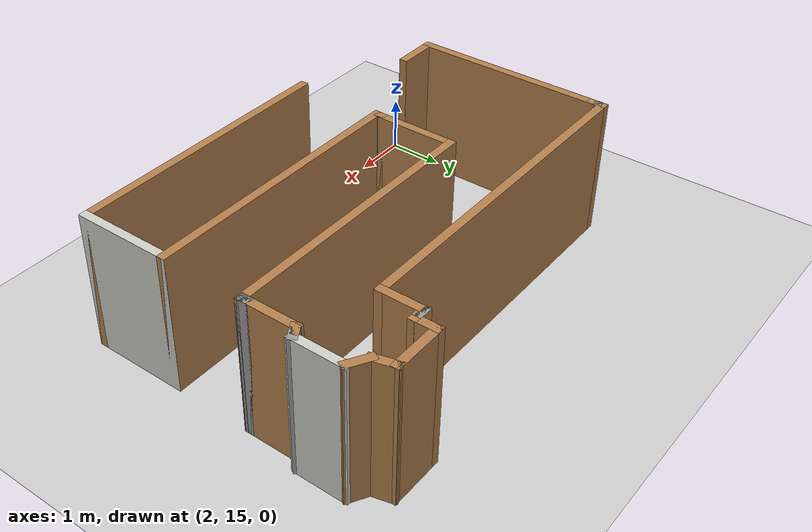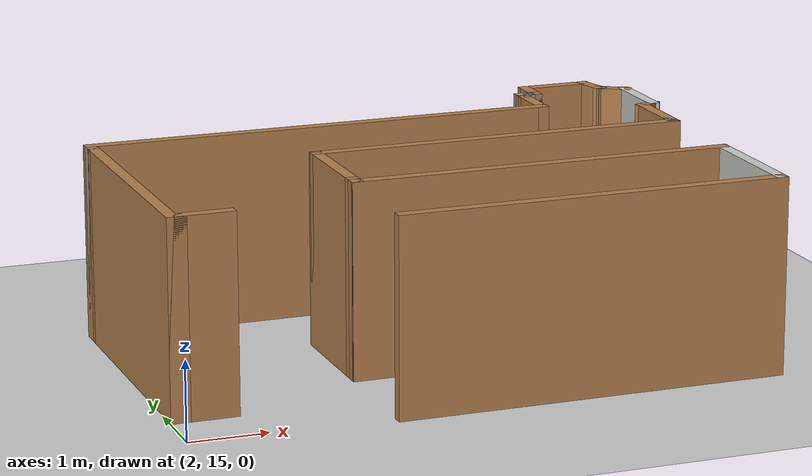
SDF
<sdf version="1.6">
 <world name="default">
  <model name="ground_plane">
   <static>1</static>
   <link name="link">
    <collision name="collision">
     <geometry><plane><normal>0 0 1</normal><size>100 100</size></plane></geometry>
     <surface>
      <contact><collide_bitmask>65535</collide_bitmask></contact>
      <friction><ode><mu>100</mu><mu2>50</mu2></ode></friction>
     </surface>
    </collision>
    <visual name="visual">
     <cast_shadows>0</cast_shadows>
     <geometry><plane><normal>0 0 1</normal><size>100 100</size></plane></geometry>
     <material>
      <script><uri>file://media/materials/scripts/gazebo.material</uri><name>Gazebo/Grey</name></script>
     </material>
    </visual>
   </link>
  </model>
  <model name="ecst_lab_v2">
   <pose>2.38151 7.60499 -4e-06 -3e-06 3e-06 -1.57079</pose>
   <link name="Wall_100">
    <collision name="Wall_100_Collision">
     <geometry><box><size>1 0.15 2.5</size></box></geometry>
     <pose>0 0 1.25 0 -0 0</pose>
    </collision>
    <visual name="Wall_100_Visual">
     <pose>0 0 1.25 0 -0 0</pose>
     <geometry><box><size>1 0.15 2.5</size></box></geometry>
     <material>
      <script><uri>file://media/materials/scripts/gazebo.material</uri><name>Gazebo/Wood</name></script>
      <ambient>1 1 1 1</ambient>
     </material>
     <meta><layer>0</layer></meta>
    </visual>
    <pose>-10.8485 7.06822 0 0 -0 0</pose>
    <inertial>
     <inertia><ixx>1</ixx><ixy>0</ixy><ixz>0</ixz><iyy>1</iyy><iyz>0</iyz><izz>1</izz></inertia>
     <mass>1</mass>
    </inertial>
   </link>
   <link name="Wall_101">
    <collision name="Wall_101_Collision">
     <geometry><box><size>0.15 0.15 2.5</size></box></geometry>
     <pose>0 0 1.25 0 -0 0</pose>
    </collision>
    <visual name="Wall_101_Visual">
     <pose>0 0 1.25 0 -0 0</pose>
     <geometry><box><size>0.15 0.15 2.5</size></box></geometry>
     <material>
      <script><uri>file://media/materials/scripts/gazebo.material</uri><name>Gazebo/Grey</name></script>
      <ambient>1 1 1 1</ambient>
     </material>
     <meta><layer>0</layer></meta>
    </visual>
    <pose>-10.4235 7.06822 0 0 -0 0</pose>
    <inertial>
     <inertia><ixx>1</ixx><ixy>0</ixy><ixz>0</ixz><iyy>1</iyy><iyz>0</iyz><izz>1</izz></inertia>
     <mass>1</mass>
    </inertial>
   </link>
   <link name="Wall_102">
    <collision name="Wall_102_Collision">
     <geometry><box><size>0.16 0.15 2.5</size></box></geometry>
     <pose>0 0 1.25 0 -0 0</pose>
    </collision>
    <visual name="Wall_102_Visual">
     <pose>0 0 1.25 0 -0 0</pose>
     <geometry><box><size>0.16 0.15 2.5</size></box></geometry>
     <material>
      <script><uri>file://media/materials/scripts/gazebo.material</uri><name>Gazebo/Grey</name></script>
      <ambient>1 1 1 1</ambient>
     </material>
     <meta><layer>0</layer></meta>
    </visual>
    <pose>-10.4185 7.06822 0 0 -0 0</pose>
    <inertial>
     <inertia><ixx>1</ixx><ixy>0</ixy><ixz>0</ixz><iyy>1</iyy><iyz>0</iyz><izz>1</izz></inertia>
     <mass>1</mass>
    </inertial>
   </link>
   <link name="Wall_103">
    <collision name="Wall_103_Collision">
     <geometry><box><size>0.16 0.15 2.5</size></box></geometry>
     <pose>0 0 1.25 0 -0 0</pose>
    </collision>
    <visual name="Wall_103_Visual">
     <pose>0 0 1.25 0 -0 0</pose>
     <geometry><box><size>0.16 0.15 2.5</size></box></geometry>
     <material>
      <script><uri>file://media/materials/scripts/gazebo.material</uri><name>Gazebo/Grey</name></script>
      <ambient>1 1 1 1</ambient>
     </material>
     <meta><layer>0</layer></meta>
    </visual>
    <pose>-10.4085 7.06822 0 0 -0 0</pose>
    <inertial>
     <inertia><ixx>1</ixx><ixy>0</ixy><ixz>0</ixz><iyy>1</iyy><iyz>0</iyz><izz>1</izz></inertia>
     <mass>1</mass>
    </inertial>
   </link>
   <link name="Wall_104">
    <collision name="Wall_104_Collision">
     <geometry><box><size>0.16 0.15 2.5</size></box></geometry>
     <pose>0 0 1.25 0 -0 0</pose>
    </collision>
    <visual name="Wall_104_Visual">
     <pose>0 0 1.25 0 -0 0</pose>
     <geometry><box><size>0.16 0.15 2.5</size></box></geometry>
     <material>
      <script><uri>file://media/materials/scripts/gazebo.material</uri><name>Gazebo/Wood</name></script>
      <ambient>1 1 1 1</ambient>
     </material>
     <meta><layer>0</layer></meta>
    </visual>
    <pose>-10.3985 7.06822 0 0 -0 0</pose>
    <inertial>
     <inertia><ixx>1</ixx><ixy>0</ixy><ixz>0</ixz><iyy>1</iyy><iyz>0</iyz><izz>1</izz></inertia>
     <mass>1</mass>
    </inertial>
   </link>
   <link name="Wall_105">
    <collision name="Wall_105_Collision">
     <geometry><box><size>0.16 0.15 2.5</size></box></geometry>
     <pose>0 0 1.25 0 -0 0</pose>
    </collision>
    <visual name="Wall_105_Visual">
     <pose>0 0 1.25 0 -0 0</pose>
     <geometry><box><size>0.16 0.15 2.5</size></box></geometry>
     <material>
      <script><uri>file://media/materials/scripts/gazebo.material</uri><name>Gazebo/Grey</name></script>
      <ambient>1 1 1 1</ambient>
     </material>
     <meta><layer>0</layer></meta>
    </visual>
    <pose>-10.3885 7.06822 0 0 -0 0</pose>
    <inertial>
     <inertia><ixx>1</ixx><ixy>0</ixy><ixz>0</ixz><iyy>1</iyy><iyz>0</iyz><izz>1</izz></inertia>
     <mass>1</mass>
    </inertial>
   </link>
   <link name="Wall_106">
    <collision name="Wall_106_Collision">
     <geometry><box><size>0.16 0.15 2.5</size></box></geometry>
     <pose>0 0 1.25 0 -0 0</pose>
    </collision>
    <visual name="Wall_106_Visual">
     <pose>0 0 1.25 0 -0 0</pose>
     <geometry><box><size>0.16 0.15 2.5</size></box></geometry>
     <material>
      <script><uri>file://media/materials/scripts/gazebo.material</uri><name>Gazebo/Wood</name></script>
      <ambient>1 1 1 1</ambient>
     </material>
     <meta><layer>0</layer></meta>
    </visual>
    <pose>-10.3785 7.06822 0 0 -0 0</pose>
    <inertial>
     <inertia><ixx>1</ixx><ixy>0</ixy><ixz>0</ixz><iyy>1</iyy><iyz>0</iyz><izz>1</izz></inertia>
     <mass>1</mass>
    </inertial>
   </link>
   <link name="Wall_107">
    <collision name="Wall_107_Collision">
     <geometry><box><size>0.16 0.15 2.5</size></box></geometry>
     <pose>0 0 1.25 0 -0 0</pose>
    </collision>
    <visual name="Wall_107_Visual">
     <pose>0 0 1.25 0 -0 0</pose>
     <geometry><box><size>0.16 0.15 2.5</size></box></geometry>
     <material>
      <script><uri>file://media/materials/scripts/gazebo.material</uri><name>Gazebo/Grey</name></script>
      <ambient>1 1 1 1</ambient>
     </material>
     <meta><layer>0</layer></meta>
    </visual>
    <pose>-10.3685 7.06822 0 0 -0 0</pose>
    <inertial>
     <inertia><ixx>1</ixx><ixy>0</ixy><ixz>0</ixz><iyy>1</iyy><iyz>0</iyz><izz>1</izz></inertia>
     <mass>1</mass>
    </inertial>
   </link>
   <link name="Wall_108">
    <collision name="Wall_108_Collision">
     <geometry><box><size>0.16 0.15 2.5</size></box></geometry>
     <pose>0 0 1.25 0 -0 0</pose>
    </collision>
    <visual name="Wall_108_Visual">
     <pose>0 0 1.25 0 -0 0</pose>
     <geometry><box><size>0.16 0.15 2.5</size></box></geometry>
     <material>
      <script><uri>file://media/materials/scripts/gazebo.material</uri><name>Gazebo/Grey</name></script>
      <ambient>1 1 1 1</ambient>
     </material>
     <meta><layer>0</layer></meta>
    </visual>
    <pose>-10.3685 7.06822 0 0 -0 3.14159</pose>
    <inertial>
     <inertia><ixx>1</ixx><ixy>0</ixy><ixz>0</ixz><iyy>1</iyy><iyz>0</iyz><izz>1</izz></inertia>
     <mass>1</mass>
    </inertial>
   </link>
   <link name="Wall_109">
    <collision name="Wall_109_Collision">
     <geometry><box><size>0.16 0.15 2.5</size></box></geometry>
     <pose>0 0 1.25 0 -0 0</pose>
    </collision>
    <visual name="Wall_109_Visual">
     <pose>0 0 1.25 0 -0 0</pose>
     <geometry><box><size>0.16 0.15 2.5</size></box></geometry>
     <material>
      <script><uri>file://media/materials/scripts/gazebo.material</uri><name>Gazebo/Grey</name></script>
      <ambient>1 1 1 1</ambient>
     </material>
     <meta><layer>0</layer></meta>
    </visual>
    <pose>-10.3685 7.06822 0 0 -0 0</pose>
    <inertial>
     <inertia><ixx>1</ixx><ixy>0</ixy><ixz>0</ixz><iyy>1</iyy><iyz>0</iyz><izz>1</izz></inertia>
     <mass>1</mass>
    </inertial>
   </link>
   <link name="Wall_110">
    <collision name="Wall_110_Collision">
     <geometry><box><size>0.16 0.15 2.5</size></box></geometry>
     <pose>0 0 1.25 0 -0 0</pose>
    </collision>
    <visual name="Wall_110_Visual">
     <pose>0 0 1.25 0 -0 0</pose>
     <geometry><box><size>0.16 0.15 2.5</size></box></geometry>
     <material>
      <script><uri>file://media/materials/scripts/gazebo.material</uri><name>Gazebo/Grey</name></script>
      <ambient>1 1 1 1</ambient>
     </material>
     <meta><layer>0</layer></meta>
    </visual>
    <pose>-10.3685 7.06822 0 0 -0 3.14159</pose>
    <inertial>
     <inertia><ixx>1</ixx><ixy>0</ixy><ixz>0</ixz><iyy>1</iyy><iyz>0</iyz><izz>1</izz></inertia>
     <mass>1</mass>
    </inertial>
   </link>
   <link name="Wall_111">
    <collision name="Wall_111_Collision">
     <geometry><box><size>0.16 0.15 2.5</size></box></geometry>
     <pose>0 0 1.25 0 -0 0</pose>
    </collision>
    <visual name="Wall_111_Visual">
     <pose>0 0 1.25 0 -0 0</pose>
     <geometry><box><size>0.16 0.15 2.5</size></box></geometry>
     <material>
      <script><uri>file://media/materials/scripts/gazebo.material</uri><name>Gazebo/Grey</name></script>
      <ambient>1 1 1 1</ambient>
     </material>
     <meta><layer>0</layer></meta>
    </visual>
    <pose>-10.3685 7.06822 0 0 -0 0</pose>
    <inertial>
     <inertia><ixx>1</ixx><ixy>0</ixy><ixz>0</ixz><iyy>1</iyy><iyz>0</iyz><izz>1</izz></inertia>
     <mass>1</mass>
    </inertial>
   </link>
   <link name="Wall_112">
    <collision name="Wall_112_Collision">
     <geometry><box><size>0.16 0.15 2.5</size></box></geometry>
     <pose>0 0 1.25 0 -0 0</pose>
    </collision>
    <visual name="Wall_112_Visual">
     <pose>0 0 1.25 0 -0 0</pose>
     <geometry><box><size>0.16 0.15 2.5</size></box></geometry>
     <material>
      <script><uri>file://media/materials/scripts/gazebo.material</uri><name>Gazebo/Grey</name></script>
      <ambient>1 1 1 1</ambient>
     </material>
     <meta><layer>0</layer></meta>
    </visual>
    <pose>-10.3685 7.06822 0 0 -0 3.14159</pose>
    <inertial>
     <inertia><ixx>1</ixx><ixy>0</ixy><ixz>0</ixz><iyy>1</iyy><iyz>0</iyz><izz>1</izz></inertia>
     <mass>1</mass>
    </inertial>
   </link>
   <link name="Wall_113">
    <collision name="Wall_113_Collision">
     <geometry><box><size>0.16 0.15 2.5</size></box></geometry>
     <pose>0 0 1.25 0 -0 0</pose>
    </collision>
    <visual name="Wall_113_Visual">
     <pose>0 0 1.25 0 -0 0</pose>
     <geometry><box><size>0.16 0.15 2.5</size></box></geometry>
     <material>
      <script><uri>file://media/materials/scripts/gazebo.material</uri><name>Gazebo/Grey</name></script>
      <ambient>1 1 1 1</ambient>
     </material>
     <meta><layer>0</layer></meta>
    </visual>
    <pose>-10.3685 7.06822 0 0 -0 0</pose>
    <inertial>
     <inertia><ixx>1</ixx><ixy>0</ixy><ixz>0</ixz><iyy>1</iyy><iyz>0</iyz><izz>1</izz></inertia>
     <mass>1</mass>
    </inertial>
   </link>
   <link name="Wall_114">
    <collision name="Wall_114_Collision">
     <geometry><box><size>0.16 0.15 2.5</size></box></geometry>
     <pose>0 0 1.25 0 -0 0</pose>
    </collision>
    <visual name="Wall_114_Visual">
     <pose>0 0 1.25 0 -0 0</pose>
     <geometry><box><size>0.16 0.15 2.5</size></box></geometry>
     <material>
      <script><uri>file://media/materials/scripts/gazebo.material</uri><name>Gazebo/Grey</name></script>
      <ambient>1 1 1 1</ambient>
     </material>
     <meta><layer>0</layer></meta>
    </visual>
    <pose>-10.3685 7.06822 0 0 -0 3.14159</pose>
    <inertial>
     <inertia><ixx>1</ixx><ixy>0</ixy><ixz>0</ixz><iyy>1</iyy><iyz>0</iyz><izz>1</izz></inertia>
     <mass>1</mass>
    </inertial>
   </link>
   <link name="Wall_115">
    <collision name="Wall_115_Collision">
     <geometry><box><size>0.16 0.15 2.5</size></box></geometry>
     <pose>0 0 1.25 0 -0 0</pose>
    </collision>
    <visual name="Wall_115_Visual">
     <pose>0 0 1.25 0 -0 0</pose>
     <geometry><box><size>0.16 0.15 2.5</size></box></geometry>
     <material>
      <script><uri>file://media/materials/scripts/gazebo.material</uri><name>Gazebo/Wood</name></script>
      <ambient>1 1 1 1</ambient>
     </material>
     <meta><layer>0</layer></meta>
    </visual>
    <pose>-10.3685 7.06822 0 0 -0 0</pose>
    <inertial>
     <inertia><ixx>1</ixx><ixy>0</ixy><ixz>0</ixz><iyy>1</iyy><iyz>0</iyz><izz>1</izz></inertia>
     <mass>1</mass>
    </inertial>
   </link>
   <link name="Wall_116">
    <collision name="Wall_116_Collision">
     <geometry><box><size>0.16 0.15 2.5</size></box></geometry>
     <pose>0 0 1.25 0 -0 0</pose>
    </collision>
    <visual name="Wall_116_Visual">
     <pose>0 0 1.25 0 -0 0</pose>
     <geometry><box><size>0.16 0.15 2.5</size></box></geometry>
     <material>
      <script><uri>file://media/materials/scripts/gazebo.material</uri><name>Gazebo/Grey</name></script>
      <ambient>1 1 1 1</ambient>
     </material>
     <meta><layer>0</layer></meta>
    </visual>
    <pose>-10.3585 7.06822 0 0 -0 0</pose>
    <inertial>
     <inertia><ixx>1</ixx><ixy>0</ixy><ixz>0</ixz><iyy>1</iyy><iyz>0</iyz><izz>1</izz></inertia>
     <mass>1</mass>
    </inertial>
   </link>
   <link name="Wall_117">
    <collision name="Wall_117_Collision">
     <geometry><box><size>0.16 0.15 2.5</size></box></geometry>
     <pose>0 0 1.25 0 -0 0</pose>
    </collision>
    <visual name="Wall_117_Visual">
     <pose>0 0 1.25 0 -0 0</pose>
     <geometry><box><size>0.16 0.15 2.5</size></box></geometry>
     <material>
      <script><uri>file://media/materials/scripts/gazebo.material</uri><name>Gazebo/Wood</name></script>
      <ambient>1 1 1 1</ambient>
     </material>
     <meta><layer>0</layer></meta>
    </visual>
    <pose>-10.3485 7.06822 0 0 -0 0</pose>
    <inertial>
     <inertia><ixx>1</ixx><ixy>0</ixy><ixz>0</ixz><iyy>1</iyy><iyz>0</iyz><izz>1</izz></inertia>
     <mass>1</mass>
    </inertial>
   </link>
   <link name="Wall_118">
    <collision name="Wall_118_Collision">
     <geometry><box><size>5 0.15 2.5</size></box></geometry>
     <pose>0 0 1.25 0 -0 0</pose>
    </collision>
    <visual name="Wall_118_Visual">
     <pose>0 0 1.25 0 -0 0</pose>
     <geometry><box><size>5 0.15 2.5</size></box></geometry>
     <material>
      <script><uri>file://media/materials/scripts/gazebo.material</uri><name>Gazebo/Wood</name></script>
      <ambient>1 1 1 1</ambient>
     </material>
     <meta><layer>0</layer></meta>
    </visual>
    <pose>-10.3435 4.64322 0 0 -0 -1.5708</pose>
    <inertial>
     <inertia><ixx>1</ixx><ixy>0</ixy><ixz>0</ixz><iyy>1</iyy><iyz>0</iyz><izz>1</izz></inertia>
     <mass>1</mass>
    </inertial>
   </link>
   <link name="Wall_119">
    <collision name="Wall_119_Collision">
     <geometry><box><size>1.5 0.15 2.5</size></box></geometry>
     <pose>0 0 1.25 0 -0 0</pose>
    </collision>
    <visual name="Wall_119_Visual">
     <pose>0 0 1.25 0 -0 0</pose>
     <geometry><box><size>1.5 0.15 2.5</size></box></geometry>
     <material>
      <script><uri>file://media/materials/scripts/gazebo.material</uri><name>Gazebo/Wood</name></script>
      <ambient>1 1 1 1</ambient>
     </material>
     <meta><layer>0</layer></meta>
    </visual>
    <pose>-9.6685 2.21822 0 0 -0 0</pose>
    <inertial>
     <inertia><ixx>1</ixx><ixy>0</ixy><ixz>0</ixz><iyy>1</iyy><iyz>0</iyz><izz>1</izz></inertia>
     <mass>1</mass>
    </inertial>
   </link>
   <link name="Wall_120">
    <collision name="Wall_120_Collision">
     <geometry><box><size>0.25 0.15 2.5</size></box></geometry>
     <pose>0 0 1.25 0 -0 0</pose>
    </collision>
    <visual name="Wall_120_Visual">
     <pose>0 0 1.25 0 -0 0</pose>
     <geometry><box><size>0.25 0.15 2.5</size></box></geometry>
     <material>
      <script><uri>file://media/materials/scripts/gazebo.material</uri><name>Gazebo/Wood</name></script>
      <ambient>1 1 1 1</ambient>
     </material>
     <meta><layer>0</layer></meta>
    </visual>
    <pose>-8.9435 2.21822 0 0 -0 0</pose>
    <inertial>
     <inertia><ixx>1</ixx><ixy>0</ixy><ixz>0</ixz><iyy>1</iyy><iyz>0</iyz><izz>1</izz></inertia>
     <mass>1</mass>
    </inertial>
   </link>
   <link name="Wall_121">
    <collision name="Wall_121_Collision">
     <geometry><box><size>0.15 0.15 2.5</size></box></geometry>
     <pose>0 0 1.25 0 -0 0</pose>
    </collision>
    <visual name="Wall_121_Visual">
     <pose>0 0 1.25 0 -0 0</pose>
     <geometry><box><size>0.15 0.15 2.5</size></box></geometry>
     <material>
      <script><uri>file://media/materials/scripts/gazebo.material</uri><name>Gazebo/Grey</name></script>
      <ambient>1 1 1 1</ambient>
     </material>
     <meta><layer>0</layer></meta>
    </visual>
    <pose>-8.8935 2.21822 0 0 -0 0</pose>
    <inertial>
     <inertia><ixx>1</ixx><ixy>0</ixy><ixz>0</ixz><iyy>1</iyy><iyz>0</iyz><izz>1</izz></inertia>
     <mass>1</mass>
    </inertial>
   </link>
   <link name="Wall_122">
    <collision name="Wall_122_Collision">
     <geometry><box><size>0.16 0.15 2.5</size></box></geometry>
     <pose>0 0 1.25 0 -0 0</pose>
    </collision>
    <visual name="Wall_122_Visual">
     <pose>0 0 1.25 0 -0 0</pose>
     <geometry><box><size>0.16 0.15 2.5</size></box></geometry>
     <material>
      <script><uri>file://media/materials/scripts/gazebo.material</uri><name>Gazebo/Wood</name></script>
      <ambient>1 1 1 1</ambient>
     </material>
     <meta><layer>0</layer></meta>
    </visual>
    <pose>-8.8885 2.21822 0 0 -0 0</pose>
    <inertial>
     <inertia><ixx>1</ixx><ixy>0</ixy><ixz>0</ixz><iyy>1</iyy><iyz>0</iyz><izz>1</izz></inertia>
     <mass>1</mass>
    </inertial>
   </link>
   <link name="Wall_123">
    <collision name="Wall_123_Collision">
     <geometry><box><size>5 0.15 2.5</size></box></geometry>
     <pose>0 0 1.25 0 -0 0</pose>
    </collision>
    <visual name="Wall_123_Visual">
     <pose>0 0 1.25 0 -0 0</pose>
     <geometry><box><size>5 0.15 2.5</size></box></geometry>
     <material>
      <script><uri>file://media/materials/scripts/gazebo.material</uri><name>Gazebo/Wood</name></script>
      <ambient>1 1 1 1</ambient>
     </material>
     <meta><layer>0</layer></meta>
    </visual>
    <pose>-8.8835 4.64322 0 0 -0 1.5708</pose>
    <inertial>
     <inertia><ixx>1</ixx><ixy>0</ixy><ixz>0</ixz><iyy>1</iyy><iyz>0</iyz><izz>1</izz></inertia>
     <mass>1</mass>
    </inertial>
   </link>
   <link name="Wall_124">
    <collision name="Wall_124_Collision">
     <geometry><box><size>1.75 0.15 2.5</size></box></geometry>
     <pose>0 0 1.25 0 -0 0</pose>
    </collision>
    <visual name="Wall_124_Visual">
     <pose>0 0 1.25 0 -0 0</pose>
     <geometry><box><size>1.75 0.15 2.5</size></box></geometry>
     <material>
      <script><uri>file://media/materials/scripts/gazebo.material</uri><name>Gazebo/CeilingTiled</name></script>
      <ambient>1 1 1 1</ambient>
     </material>
     <meta><layer>0</layer></meta>
    </visual>
    <pose>-8.0835 7.06822 0 0 -0 0</pose>
    <inertial>
     <inertia><ixx>1</ixx><ixy>0</ixy><ixz>0</ixz><iyy>1</iyy><iyz>0</iyz><izz>1</izz></inertia>
     <mass>1</mass>
    </inertial>
   </link>
   <link name="Wall_125">
    <collision name="Wall_125_Collision">
     <geometry><box><size>5 0.15 2.5</size></box></geometry>
     <pose>0 0 1.25 0 -0 0</pose>
    </collision>
    <visual name="Wall_125_Visual">
     <pose>0 0 1.25 0 -0 0</pose>
     <geometry><box><size>5 0.15 2.5</size></box></geometry>
     <material>
      <script><uri>file://media/materials/scripts/gazebo.material</uri><name>Gazebo/Wood</name></script>
      <ambient>1 1 1 1</ambient>
     </material>
     <meta><layer>0</layer></meta>
    </visual>
    <pose>-7.2835 4.64322 0 0 -0 -1.5708</pose>
    <inertial>
     <inertia><ixx>1</ixx><ixy>0</ixy><ixz>0</ixz><iyy>1</iyy><iyz>0</iyz><izz>1</izz></inertia>
     <mass>1</mass>
    </inertial>
   </link>
   <link name="Wall_79">
    <collision name="Wall_79_Collision">
     <geometry><box><size>0.75 0.15 2.5</size></box></geometry>
     <pose>0 0 1.25 0 -0 0</pose>
    </collision>
    <visual name="Wall_79_Visual">
     <pose>0 0 1.25 0 -0 0</pose>
     <geometry><box><size>0.75 0.15 2.5</size></box></geometry>
     <material>
      <script><uri>file://media/materials/scripts/gazebo.material</uri><name>Gazebo/Wood</name></script>
      <ambient>1 1 1 1</ambient>
     </material>
     <meta><layer>0</layer></meta>
    </visual>
    <pose>-8.14657 0.097726 0 0 -0 -1.5708</pose>
    <inertial>
     <inertia><ixx>1</ixx><ixy>0</ixy><ixz>0</ixz><iyy>1</iyy><iyz>0</iyz><izz>1</izz></inertia>
     <mass>1</mass>
    </inertial>
   </link>
   <link name="Wall_80">
    <collision name="Wall_80_Collision">
     <geometry><box><size>0.25 0.15 2.5</size></box></geometry>
     <pose>0 0 1.25 0 -0 0</pose>
    </collision>
    <visual name="Wall_80_Visual">
     <pose>0 0 1.25 0 -0 0</pose>
     <geometry><box><size>0.25 0.15 2.5</size></box></geometry>
     <material>
      <script><uri>file://media/materials/scripts/gazebo.material</uri><name>Gazebo/Wood</name></script>
      <ambient>1 1 1 1</ambient>
     </material>
     <meta><layer>0</layer></meta>
    </visual>
    <pose>-8.14657 -0.252274 0 0 -0 -1.5708</pose>
    <inertial>
     <inertia><ixx>1</ixx><ixy>0</ixy><ixz>0</ixz><iyy>1</iyy><iyz>0</iyz><izz>1</izz></inertia>
     <mass>1</mass>
    </inertial>
   </link>
   <link name="Wall_81">
    <collision name="Wall_81_Collision">
     <geometry><box><size>3.5 0.15 2.5</size></box></geometry>
     <pose>0 0 1.25 0 -0 0</pose>
    </collision>
    <visual name="Wall_81_Visual">
     <pose>0 0 1.25 0 -0 0</pose>
     <geometry><box><size>3.5 0.15 2.5</size></box></geometry>
     <material>
      <script><uri>file://media/materials/scripts/gazebo.material</uri><name>Gazebo/Wood</name></script>
      <ambient>1 1 1 1</ambient>
     </material>
     <meta><layer>0</layer></meta>
    </visual>
    <pose>-9.82157 -0.302274 0 0 -0 3.14159</pose>
    <inertial>
     <inertia><ixx>1</ixx><ixy>0</ixy><ixz>0</ixz><iyy>1</iyy><iyz>0</iyz><izz>1</izz></inertia>
     <mass>1</mass>
    </inertial>
   </link>
   <link name="Wall_82">
    <collision name="Wall_82_Collision">
     <geometry><box><size>0.25 0.15 2.5</size></box></geometry>
     <pose>0 0 1.25 0 -0 0</pose>
    </collision>
    <visual name="Wall_82_Visual">
     <pose>0 0 1.25 0 -0 0</pose>
     <geometry><box><size>0.25 0.15 2.5</size></box></geometry>
     <material>
      <script><uri>file://media/materials/scripts/gazebo.material</uri><name>Gazebo/Wood</name></script>
      <ambient>1 1 1 1</ambient>
     </material>
     <meta><layer>0</layer></meta>
    </visual>
    <pose>-11.5466 -0.302274 0 0 -0 3.14159</pose>
    <inertial>
     <inertia><ixx>1</ixx><ixy>0</ixy><ixz>0</ixz><iyy>1</iyy><iyz>0</iyz><izz>1</izz></inertia>
     <mass>1</mass>
    </inertial>
   </link>
   <link name="Wall_83">
    <collision name="Wall_83_Collision">
     <geometry><box><size>0.15 0.15 2.5</size></box></geometry>
     <pose>0 0 1.25 0 -0 0</pose>
    </collision>
    <visual name="Wall_83_Visual">
     <pose>0 0 1.25 0 -0 0</pose>
     <geometry><box><size>0.15 0.15 2.5</size></box></geometry>
     <material>
      <script><uri>file://media/materials/scripts/gazebo.material</uri><name>Gazebo/Grey</name></script>
      <ambient>1 1 1 1</ambient>
     </material>
     <meta><layer>0</layer></meta>
    </visual>
    <pose>-11.5966 -0.302274 0 0 -0 0</pose>
    <inertial>
     <inertia><ixx>1</ixx><ixy>0</ixy><ixz>0</ixz><iyy>1</iyy><iyz>0</iyz><izz>1</izz></inertia>
     <mass>1</mass>
    </inertial>
   </link>
   <link name="Wall_84">
    <collision name="Wall_84_Collision">
     <geometry><box><size>0.16 0.15 2.5</size></box></geometry>
     <pose>0 0 1.25 0 -0 0</pose>
    </collision>
    <visual name="Wall_84_Visual">
     <pose>0 0 1.25 0 -0 0</pose>
     <geometry><box><size>0.16 0.15 2.5</size></box></geometry>
     <material>
      <script><uri>file://media/materials/scripts/gazebo.material</uri><name>Gazebo/Grey</name></script>
      <ambient>1 1 1 1</ambient>
     </material>
     <meta><layer>0</layer></meta>
    </visual>
    <pose>-11.5916 -0.302274 0 0 -0 0</pose>
    <inertial>
     <inertia><ixx>1</ixx><ixy>0</ixy><ixz>0</ixz><iyy>1</iyy><iyz>0</iyz><izz>1</izz></inertia>
     <mass>1</mass>
    </inertial>
   </link>
   <link name="Wall_85">
    <collision name="Wall_85_Collision">
     <geometry><box><size>0.25 0.15 2.5</size></box></geometry>
     <pose>0 0 1.25 0 -0 0</pose>
    </collision>
    <visual name="Wall_85_Visual">
     <pose>0 0 1.25 0 -0 0</pose>
     <geometry><box><size>0.25 0.15 2.5</size></box></geometry>
     <material>
      <script><uri>file://media/materials/scripts/gazebo.material</uri><name>Gazebo/Wood</name></script>
      <ambient>1 1 1 1</ambient>
     </material>
     <meta><layer>0</layer></meta>
    </visual>
    <pose>-11.6366 -0.302274 0 0 -0 3.14159</pose>
    <inertial>
     <inertia><ixx>1</ixx><ixy>0</ixy><ixz>0</ixz><iyy>1</iyy><iyz>0</iyz><izz>1</izz></inertia>
     <mass>1</mass>
    </inertial>
   </link>
   <link name="Wall_86">
    <collision name="Wall_86_Collision">
     <geometry><box><size>6.25 0.15 2.5</size></box></geometry>
     <pose>0 0 1.25 0 -0 0</pose>
    </collision>
    <visual name="Wall_86_Visual">
     <pose>0 0 1.25 0 -0 0</pose>
     <geometry><box><size>6.25 0.15 2.5</size></box></geometry>
     <material>
      <script><uri>file://media/materials/scripts/gazebo.material</uri><name>Gazebo/Wood</name></script>
      <ambient>1 1 1 1</ambient>
     </material>
     <meta><layer>0</layer></meta>
    </visual>
    <pose>-11.6866 2.74773 0 0 -0 1.5708</pose>
    <inertial>
     <inertia><ixx>1</ixx><ixy>0</ixy><ixz>0</ixz><iyy>1</iyy><iyz>0</iyz><izz>1</izz></inertia>
     <mass>1</mass>
    </inertial>
   </link>
   <link name="Wall_87">
    <collision name="Wall_87_Collision">
     <geometry><box><size>0.75 0.15 2.5</size></box></geometry>
     <pose>0 0 1.25 0 -0 0</pose>
    </collision>
    <visual name="Wall_87_Visual">
     <pose>0 0 1.25 0 -0 0</pose>
     <geometry><box><size>0.75 0.15 2.5</size></box></geometry>
     <material>
      <script><uri>file://media/materials/scripts/gazebo.material</uri><name>Gazebo/Wood</name></script>
      <ambient>1 1 1 1</ambient>
     </material>
     <meta><layer>0</layer></meta>
    </visual>
    <pose>-11.9866 5.79773 0 0 -0 3.14159</pose>
    <inertial>
     <inertia><ixx>1</ixx><ixy>0</ixy><ixz>0</ixz><iyy>1</iyy><iyz>0</iyz><izz>1</izz></inertia>
     <mass>1</mass>
    </inertial>
   </link>
   <link name="Wall_88">
    <collision name="Wall_88_Collision">
     <geometry><box><size>0.25 0.15 2.5</size></box></geometry>
     <pose>0 0 1.25 0 -0 0</pose>
    </collision>
    <visual name="Wall_88_Visual">
     <pose>0 0 1.25 0 -0 0</pose>
     <geometry><box><size>0.25 0.15 2.5</size></box></geometry>
     <material>
      <script><uri>file://media/materials/scripts/gazebo.material</uri><name>Gazebo/Wood</name></script>
      <ambient>1 1 1 1</ambient>
     </material>
     <meta><layer>0</layer></meta>
    </visual>
    <pose>-12.3366 5.79773 0 0 -0 3.14159</pose>
    <inertial>
     <inertia><ixx>1</ixx><ixy>0</ixy><ixz>0</ixz><iyy>1</iyy><iyz>0</iyz><izz>1</izz></inertia>
     <mass>1</mass>
    </inertial>
   </link>
   <link name="Wall_89">
    <collision name="Wall_89_Collision">
     <geometry><box><size>0.25 0.15 2.5</size></box></geometry>
     <pose>0 0 1.25 0 -0 0</pose>
    </collision>
    <visual name="Wall_89_Visual">
     <pose>0 0 1.25 0 -0 0</pose>
     <geometry><box><size>0.25 0.15 2.5</size></box></geometry>
     <material>
      <script><uri>file://media/materials/scripts/gazebo.material</uri><name>Gazebo/Grey</name></script>
      <ambient>1 1 1 1</ambient>
     </material>
     <meta><layer>0</layer></meta>
    </visual>
    <pose>-12.3866 5.84773 0 0 -0 1.5708</pose>
    <inertial>
     <inertia><ixx>1</ixx><ixy>0</ixy><ixz>0</ixz><iyy>1</iyy><iyz>0</iyz><izz>1</izz></inertia>
     <mass>1</mass>
    </inertial>
   </link>
   <link name="Wall_90">
    <collision name="Wall_90_Collision">
     <geometry><box><size>0.25 0.15 2.5</size></box></geometry>
     <pose>0 0 1.25 0 -0 0</pose>
    </collision>
    <visual name="Wall_90_Visual">
     <pose>0 0 1.25 0 -0 0</pose>
     <geometry><box><size>0.25 0.15 2.5</size></box></geometry>
     <material>
      <script><uri>file://media/materials/scripts/gazebo.material</uri><name>Gazebo/Wood</name></script>
      <ambient>1 1 1 1</ambient>
     </material>
     <meta><layer>0</layer></meta>
    </visual>
    <pose>-12.3866 5.84773 0 0 -0 -1.5708</pose>
    <inertial>
     <inertia><ixx>1</ixx><ixy>0</ixy><ixz>0</ixz><iyy>1</iyy><iyz>0</iyz><izz>1</izz></inertia>
     <mass>1</mass>
    </inertial>
   </link>
   <link name="Wall_91">
    <collision name="Wall_91_Collision">
     <geometry><box><size>0.25 0.15 2.5</size></box></geometry>
     <pose>0 0 1.25 0 -0 0</pose>
    </collision>
    <visual name="Wall_91_Visual">
     <pose>0 0 1.25 0 -0 0</pose>
     <geometry><box><size>0.25 0.15 2.5</size></box></geometry>
     <material>
      <script><uri>file://media/materials/scripts/gazebo.material</uri><name>Gazebo/Wood</name></script>
      <ambient>1 1 1 1</ambient>
     </material>
     <meta><layer>0</layer></meta>
    </visual>
    <pose>-12.3866 5.84773 0 0 -0 1.5708</pose>
    <inertial>
     <inertia><ixx>1</ixx><ixy>0</ixy><ixz>0</ixz><iyy>1</iyy><iyz>0</iyz><izz>1</izz></inertia>
     <mass>1</mass>
    </inertial>
   </link>
   <link name="Wall_92">
    <collision name="Wall_92_Collision">
     <geometry><box><size>0.25 0.15 2.5</size></box></geometry>
     <pose>0 0 1.25 0 -0 0</pose>
    </collision>
    <visual name="Wall_92_Visual">
     <pose>0 0 1.25 0 -0 0</pose>
     <geometry><box><size>0.25 0.15 2.5</size></box></geometry>
     <material>
      <script><uri>file://media/materials/scripts/gazebo.material</uri><name>Gazebo/Wood</name></script>
      <ambient>1 1 1 1</ambient>
     </material>
     <meta><layer>0</layer></meta>
    </visual>
    <pose>-12.3866 5.94773 0 0 -0 1.5708</pose>
    <inertial>
     <inertia><ixx>1</ixx><ixy>0</ixy><ixz>0</ixz><iyy>1</iyy><iyz>0</iyz><izz>1</izz></inertia>
     <mass>1</mass>
    </inertial>
   </link>
   <link name="Wall_93">
    <collision name="Wall_93_Collision">
     <geometry><box><size>0.5 0.15 2.5</size></box></geometry>
     <pose>0 0 1.25 0 -0 0</pose>
    </collision>
    <visual name="Wall_93_Visual">
     <pose>0 0 1.25 0 -0 0</pose>
     <geometry><box><size>0.5 0.15 2.5</size></box></geometry>
     <material>
      <script><uri>file://media/materials/scripts/gazebo.material</uri><name>Gazebo/Wood</name></script>
      <ambient>1 1 1 1</ambient>
     </material>
     <meta><layer>0</layer></meta>
    </visual>
    <pose>-12.5616 5.99773 0 0 -0 3.14159</pose>
    <inertial>
     <inertia><ixx>1</ixx><ixy>0</ixy><ixz>0</ixz><iyy>1</iyy><iyz>0</iyz><izz>1</izz></inertia>
     <mass>1</mass>
    </inertial>
   </link>
   <link name="Wall_94">
    <collision name="Wall_94_Collision">
     <geometry><box><size>1 0.15 2.5</size></box></geometry>
     <pose>0 0 1.25 0 -0 0</pose>
    </collision>
    <visual name="Wall_94_Visual">
     <pose>0 0 1.25 0 -0 0</pose>
     <geometry><box><size>1 0.15 2.5</size></box></geometry>
     <material>
      <script><uri>file://media/materials/scripts/gazebo.material</uri><name>Gazebo/Wood</name></script>
      <ambient>1 1 1 1</ambient>
     </material>
     <meta><layer>0</layer></meta>
    </visual>
    <pose>-12.7366 6.42273 0 0 -0 1.5708</pose>
    <inertial>
     <inertia><ixx>1</ixx><ixy>0</ixy><ixz>0</ixz><iyy>1</iyy><iyz>0</iyz><izz>1</izz></inertia>
     <mass>1</mass>
    </inertial>
   </link>
   <link name="Wall_95">
    <collision name="Wall_95_Collision">
     <geometry><box><size>0.5 0.15 2.5</size></box></geometry>
     <pose>0 0 1.25 0 -0 0</pose>
    </collision>
    <visual name="Wall_95_Visual">
     <pose>0 0 1.25 0 -0 0</pose>
     <geometry><box><size>0.5 0.15 2.5</size></box></geometry>
     <material>
      <script><uri>file://media/materials/scripts/gazebo.material</uri><name>Gazebo/Wood</name></script>
      <ambient>1 1 1 1</ambient>
     </material>
     <meta><layer>0</layer></meta>
    </visual>
    <pose>-12.5675 6.89302 0 0 -0 0.261799</pose>
    <inertial>
     <inertia><ixx>1</ixx><ixy>0</ixy><ixz>0</ixz><iyy>1</iyy><iyz>0</iyz><izz>1</izz></inertia>
     <mass>1</mass>
    </inertial>
   </link>
   <link name="Wall_96">
    <collision name="Wall_96_Collision">
     <geometry><box><size>0.5 0.15 2.5</size></box></geometry>
     <pose>0 0 1.25 0 -0 0</pose>
    </collision>
    <visual name="Wall_96_Visual">
     <pose>0 0 1.25 0 -0 0</pose>
     <geometry><box><size>0.5 0.15 2.5</size></box></geometry>
     <material>
      <script><uri>file://media/materials/scripts/gazebo.material</uri><name>Gazebo/Wood</name></script>
      <ambient>1 1 1 1</ambient>
     </material>
     <meta><layer>0</layer></meta>
    </visual>
    <pose>-12.311 7.08987 0 0 -0 1.0472</pose>
    <inertial>
     <inertia><ixx>1</ixx><ixy>0</ixy><ixz>0</ixz><iyy>1</iyy><iyz>0</iyz><izz>1</izz></inertia>
     <mass>1</mass>
    </inertial>
   </link>
   <link name="Wall_97">
    <collision name="Wall_97_Collision">
     <geometry><box><size>1 0.15 2.5</size></box></geometry>
     <pose>0 0 1.25 0 -0 0</pose>
    </collision>
    <visual name="Wall_97_Visual">
     <pose>0 0 1.25 0 -0 0</pose>
     <geometry><box><size>1 0.15 2.5</size></box></geometry>
     <material>
      <script><uri>file://media/materials/scripts/gazebo.material</uri><name>Gazebo/CeilingTiled</name></script>
      <ambient>1 1 1 1</ambient>
     </material>
     <meta><layer>0</layer></meta>
    </visual>
    <pose>-11.7985 7.24142 0 0 -0 0</pose>
    <inertial>
     <inertia><ixx>1</ixx><ixy>0</ixy><ixz>0</ixz><iyy>1</iyy><iyz>0</iyz><izz>1</izz></inertia>
     <mass>1</mass>
    </inertial>
   </link>
   <link name="Wall_98">
    <collision name="Wall_98_Collision">
     <geometry><box><size>0.25 0.15 2.5</size></box></geometry>
     <pose>0 0 1.25 0 -0 0</pose>
    </collision>
    <visual name="Wall_98_Visual">
     <pose>0 0 1.25 0 -0 0</pose>
     <geometry><box><size>0.25 0.15 2.5</size></box></geometry>
     <material>
      <script><uri>file://media/materials/scripts/gazebo.material</uri><name>Gazebo/Grey</name></script>
      <ambient>1 1 1 1</ambient>
     </material>
     <meta><layer>0</layer></meta>
    </visual>
    <pose>-11.3485 7.19812 0 0 -0 -1.0472</pose>
    <inertial>
     <inertia><ixx>1</ixx><ixy>0</ixy><ixz>0</ixz><iyy>1</iyy><iyz>0</iyz><izz>1</izz></inertia>
     <mass>1</mass>
    </inertial>
   </link>
   <link name="Wall_99">
    <collision name="Wall_99_Collision">
     <geometry><box><size>0.25 0.15 2.5</size></box></geometry>
     <pose>0 0 1.25 0 -0 0</pose>
    </collision>
    <visual name="Wall_99_Visual">
     <pose>0 0 1.25 0 -0 0</pose>
     <geometry><box><size>0.25 0.15 2.5</size></box></geometry>
     <material>
      <script><uri>file://media/materials/scripts/gazebo.material</uri><name>Gazebo/Wood</name></script>
      <ambient>1 1 1 1</ambient>
     </material>
     <meta><layer>0</layer></meta>
    </visual>
    <pose>-11.2985 7.11152 0 0 -0 -1.0472</pose>
    <inertial>
     <inertia><ixx>1</ixx><ixy>0</ixy><ixz>0</ixz><iyy>1</iyy><iyz>0</iyz><izz>1</izz></inertia>
     <mass>1</mass>
    </inertial>
   </link>
  </model>
 </world>
</sdf>
